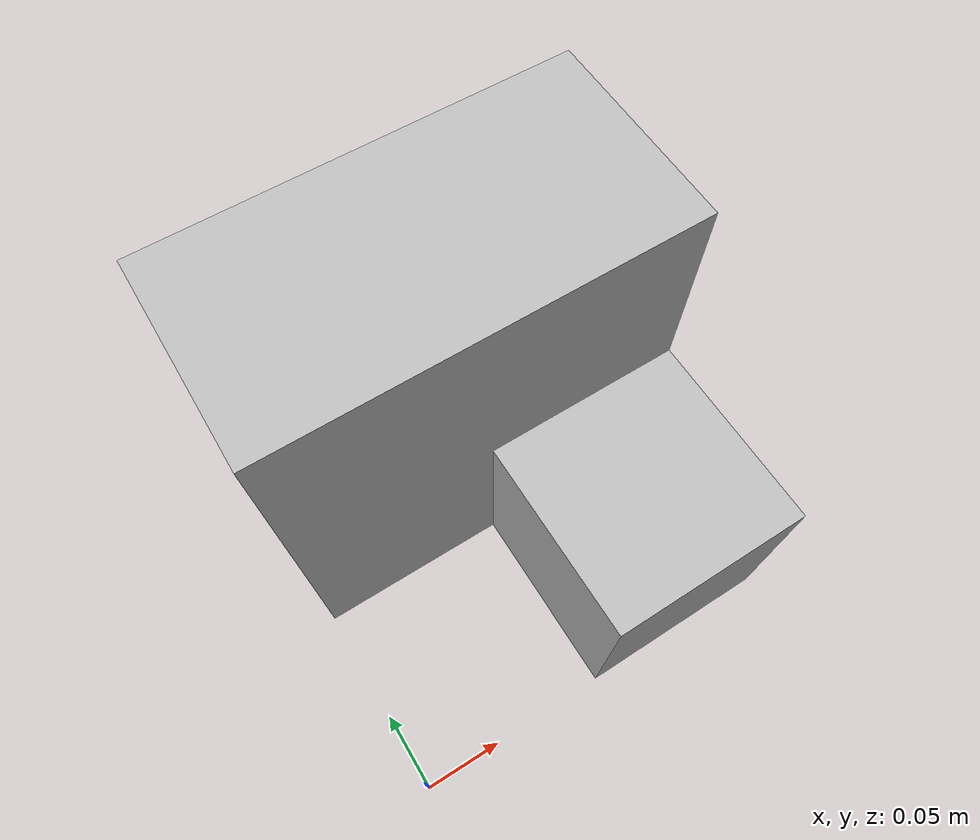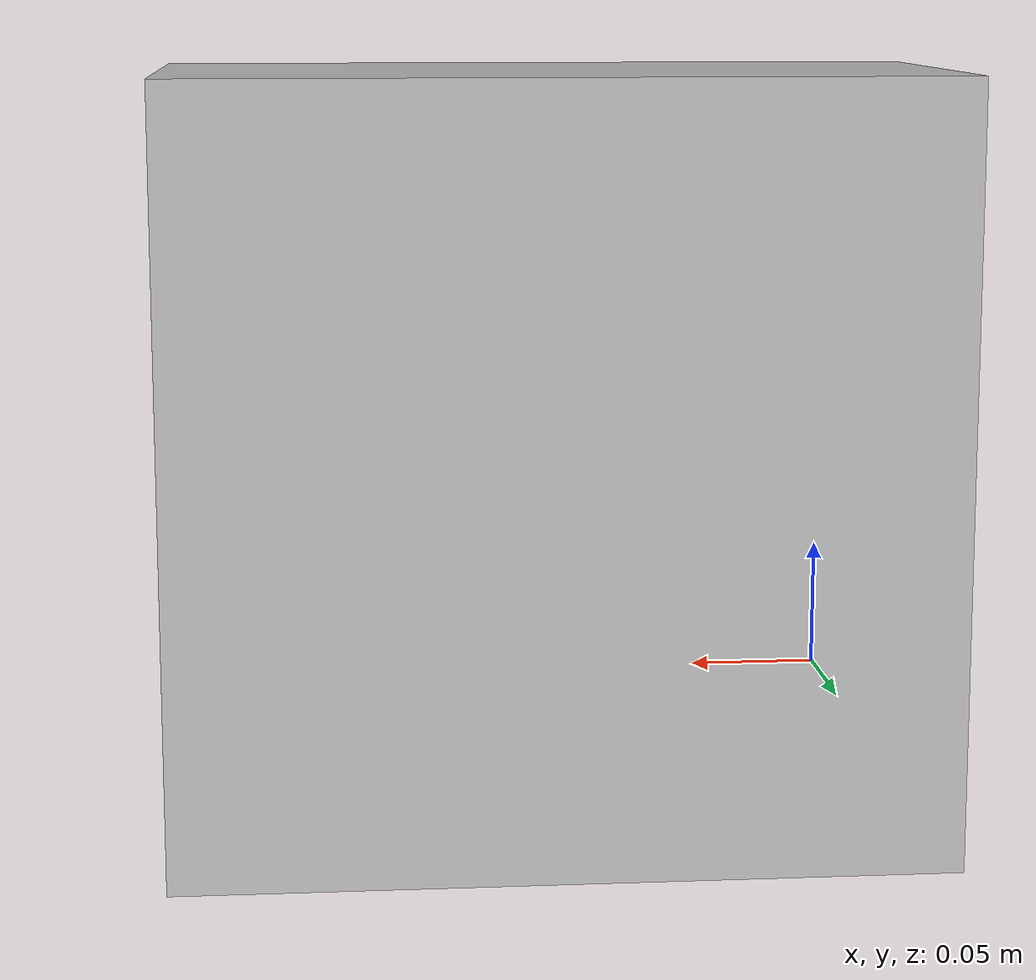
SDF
<?xml version="1.0"?>
<sdf version="1.9">
  <model name="target">
    <static>true</static>

    <link name="target_link">

      <visual name="target_visual">
        <geometry>
          <mesh>
            <scale>0.005 0.005 0.005</scale>
            <uri>meshes/target.stl</uri>
          </mesh>
        </geometry>
      </visual>

      <collision name="target_collision">
        <geometry>
          <mesh>
            <scale>0.005 0.005 0.005</scale>
            <uri>meshes/target_collision.stl</uri>
          </mesh>
        </geometry>
        <surface>
          <contact>
            <collide_bitmask>0xF0</collide_bitmask>
          </contact>
        </surface>
      </collision>

      <inertial>
        <mass>0.0828125</mass>
        <inertia>
          <ixx>0.0000345</ixx> <iyy>0.0000345</iyy> <izz>0.0000345</izz>
          <ixy>0.0</ixy> <ixz>0.0</ixz> <iyz>0.0</iyz>
        </inertia>
      </inertial>

    </link>
  </model>
</sdf>
